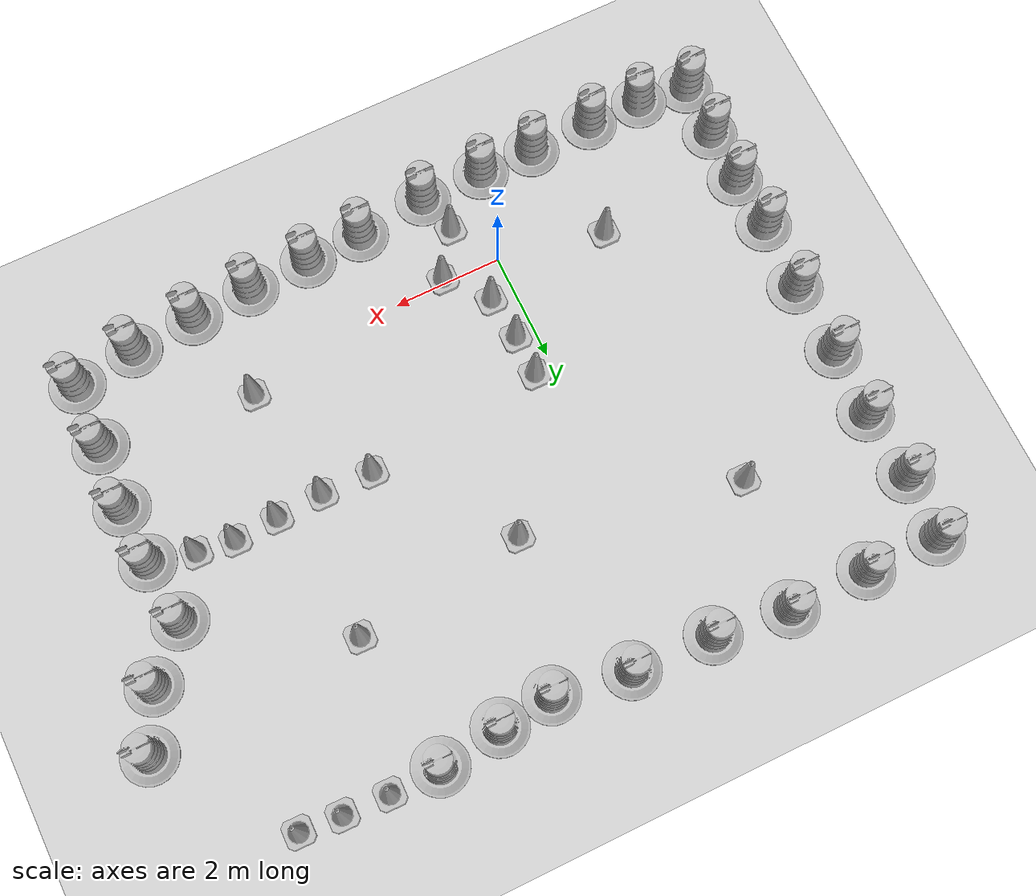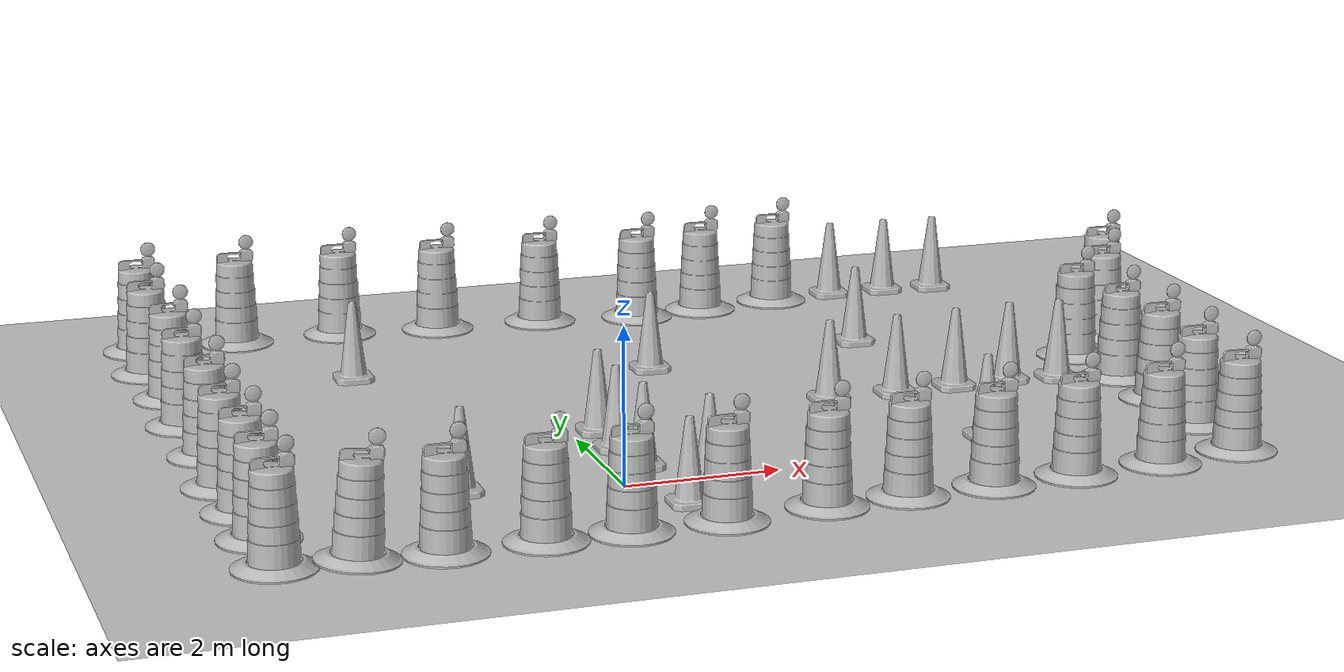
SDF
<sdf version="1.7">
 <world name="default">
  <light name="sun" type="directional">
   <pose>0 0 10 0 -0 0</pose>
   <diffuse>0.8 0.8 0.8 1</diffuse>
   <specular>0.2 0.2 0.2 1</specular>
   <attenuation>
    <range>1000</range>
    <constant>0.9</constant>
    <linear>0.01</linear>
    <quadratic>0.001</quadratic>
   </attenuation>
   <direction>-0.5 0.1 -0.9</direction>
   <spot><inner_angle>0</inner_angle><outer_angle>0</outer_angle><falloff>0</falloff></spot>
  </light>
  <model name="ground_plane">
   <static>1</static>
   <link name="link">
    <collision name="collision">
     <geometry><plane><normal>0 0 1</normal><size>100 100</size></plane></geometry>
     <surface>
      <contact><collide_bitmask>65535</collide_bitmask></contact>
      <friction><ode><mu>100</mu><mu2>50</mu2></ode></friction>
     </surface>
    </collision>
    <visual name="visual">
     <cast_shadows>0</cast_shadows>
     <geometry><plane><normal>0 0 1</normal><size>100 100</size></plane></geometry>
     <material>
      <script><uri>file://media/materials/scripts/gazebo.material</uri><name>Gazebo/Grey</name></script>
     </material>
    </visual>
   </link>
  </model>
  <gravity>0 0 -9.8</gravity>
  <magnetic_field>6e-06 2.3e-05 -4.2e-05</magnetic_field>
  <atmosphere type="adiabatic"/>
  <physics type="ode">
   <max_step_size>0.001</max_step_size>
   <real_time_factor>1</real_time_factor>
   <real_time_update_rate>1000</real_time_update_rate>
  </physics>
  <scene><ambient>0.4 0.4 0.4 1</ambient><background>0.7 0.7 0.7 1</background><shadows>1</shadows></scene>
  <spherical_coordinates>
   <surface_model>EARTH_WGS84</surface_model>
   <latitude_deg>0</latitude_deg>
   <longitude_deg>0</longitude_deg>
   <elevation>0</elevation>
   <heading_deg>0</heading_deg>
  </spherical_coordinates>
  <model name="Construction Cone">
   <link name="link">
    <collision name="collision">
     <geometry>
      <mesh><scale>10 10 10</scale><uri>model://construction_cone/meshes/construction_cone.dae</uri></mesh>
     </geometry>
    </collision>
    <visual name="visual">
     <geometry>
      <mesh><scale>10 10 10</scale><uri>model://construction_cone/meshes/construction_cone.dae</uri></mesh>
     </geometry>
    </visual>
    <inertial>
     <inertia><ixx>1</ixx><ixy>0</ixy><ixz>0</ixz><iyy>1</iyy><iyz>0</iyz><izz>1</izz></inertia>
     <mass>1</mass>
    </inertial>
   </link>
   <pose>0.52167 -0.888367 -0 0 -0 -0.018037</pose>
  </model>
  <model name="Construction Barrel">
   <link name="link">
    <inertial>
     <pose>0 0 0.4 0 -0 0</pose>
     <mass>500</mass>
     <inertia><ixx>51.2096</ixx><iyy>51.2096</iyy><izz>25</izz><ixy>0</ixy><ixz>0</ixz><iyz>0</iyz></inertia>
    </inertial>
    <collision name="collision">
     <geometry><mesh><uri>model://construction_barrel/meshes/construction_barrel.dae</uri></mesh></geometry>
    </collision>
    <visual name="visual">
     <geometry><mesh><uri>model://construction_barrel/meshes/construction_barrel.dae</uri></mesh></geometry>
    </visual>
   </link>
   <pose>-4.5871 -0.550462 -2e-06 7e-06 -4e-06 -0.002662</pose>
  </model>
  <model name="Construction Barrel_clone">
   <link name="link">
    <inertial>
     <pose>0 0 0.4 0 -0 0</pose>
     <mass>500</mass>
     <inertia><ixx>51.2096</ixx><iyy>51.2096</iyy><izz>25</izz><ixy>0</ixy><ixz>0</ixz><iyz>0</iyz></inertia>
    </inertial>
    <collision name="collision">
     <geometry><mesh><uri>model://construction_barrel/meshes/construction_barrel.dae</uri></mesh></geometry>
    </collision>
    <visual name="visual">
     <geometry><mesh><uri>model://construction_barrel/meshes/construction_barrel.dae</uri></mesh></geometry>
    </visual>
   </link>
   <pose>-4.62089 1.4811 -6e-06 -6e-06 -1.1e-05 0.001942</pose>
  </model>
  <model name="Construction Barrel_clone_0">
   <link name="link">
    <inertial>
     <pose>0 0 0.4 0 -0 0</pose>
     <mass>500</mass>
     <inertia><ixx>51.2096</ixx><iyy>51.2096</iyy><izz>25</izz><ixy>0</ixy><ixz>0</ixz><iyz>0</iyz></inertia>
    </inertial>
    <collision name="collision">
     <geometry><mesh><uri>model://construction_barrel/meshes/construction_barrel.dae</uri></mesh></geometry>
    </collision>
    <visual name="visual">
     <geometry><mesh><uri>model://construction_barrel/meshes/construction_barrel.dae</uri></mesh></geometry>
    </visual>
   </link>
   <pose>-4.56029 2.78047 -2e-06 -7e-06 -4e-06 -4.7e-05</pose>
  </model>
  <model name="Construction Barrel_clone_1">
   <link name="link">
    <inertial>
     <pose>0 0 0.4 0 -0 0</pose>
     <mass>500</mass>
     <inertia><ixx>51.2096</ixx><iyy>51.2096</iyy><izz>25</izz><ixy>0</ixy><ixz>0</ixz><iyz>0</iyz></inertia>
    </inertial>
    <collision name="collision">
     <geometry><mesh><uri>model://construction_barrel/meshes/construction_barrel.dae</uri></mesh></geometry>
    </collision>
    <visual name="visual">
     <geometry><mesh><uri>model://construction_barrel/meshes/construction_barrel.dae</uri></mesh></geometry>
    </visual>
   </link>
   <pose>-4.57095 0.467381 -2e-06 7e-06 -4e-06 0.005178</pose>
  </model>
  <model name="Construction Barrel_clone_2">
   <link name="link">
    <inertial>
     <pose>0 0 0.4 0 -0 0</pose>
     <mass>500</mass>
     <inertia><ixx>51.2096</ixx><iyy>51.2096</iyy><izz>25</izz><ixy>0</ixy><ixz>0</ixz><iyz>0</iyz></inertia>
    </inertial>
    <collision name="collision">
     <geometry><mesh><uri>model://construction_barrel/meshes/construction_barrel.dae</uri></mesh></geometry>
    </collision>
    <visual name="visual">
     <geometry><mesh><uri>model://construction_barrel/meshes/construction_barrel.dae</uri></mesh></geometry>
    </visual>
   </link>
   <pose>-4.61691 -1.57171 -0 0 -0 0.06464</pose>
  </model>
  <model name="Construction Barrel_clone_3">
   <link name="link">
    <inertial>
     <pose>0 0 0.4 0 -0 0</pose>
     <mass>500</mass>
     <inertia><ixx>51.2096</ixx><iyy>51.2096</iyy><izz>25</izz><ixy>0</ixy><ixz>0</ixz><iyz>0</iyz></inertia>
    </inertial>
    <collision name="collision">
     <geometry><mesh><uri>model://construction_barrel/meshes/construction_barrel.dae</uri></mesh></geometry>
    </collision>
    <visual name="visual">
     <geometry><mesh><uri>model://construction_barrel/meshes/construction_barrel.dae</uri></mesh></geometry>
    </visual>
   </link>
   <pose>-3.6926 -1.67387 0.03046 -0.007848 0.059768 -0.096534</pose>
  </model>
  <model name="Construction Barrel_clone_4">
   <link name="link">
    <inertial>
     <pose>0 0 0.4 0 -0 0</pose>
     <mass>500</mass>
     <inertia><ixx>51.2096</ixx><iyy>51.2096</iyy><izz>25</izz><ixy>0</ixy><ixz>0</ixz><iyz>0</iyz></inertia>
    </inertial>
    <collision name="collision">
     <geometry><mesh><uri>model://construction_barrel/meshes/construction_barrel.dae</uri></mesh></geometry>
    </collision>
    <visual name="visual">
     <geometry><mesh><uri>model://construction_barrel/meshes/construction_barrel.dae</uri></mesh></geometry>
    </visual>
   </link>
   <pose>-2.67268 -1.69044 -0 0 -0 0.037055</pose>
  </model>
  <model name="Construction Barrel_clone_5">
   <link name="link">
    <inertial>
     <pose>0 0 0.4 0 -0 0</pose>
     <mass>500</mass>
     <inertia><ixx>51.2096</ixx><iyy>51.2096</iyy><izz>25</izz><ixy>0</ixy><ixz>0</ixz><iyz>0</iyz></inertia>
    </inertial>
    <collision name="collision">
     <geometry><mesh><uri>model://construction_barrel/meshes/construction_barrel.dae</uri></mesh></geometry>
    </collision>
    <visual name="visual">
     <geometry><mesh><uri>model://construction_barrel/meshes/construction_barrel.dae</uri></mesh></geometry>
    </visual>
   </link>
   <pose>-1.48008 -1.6652 -2e-06 7e-06 -2e-06 -4.3e-05</pose>
  </model>
  <model name="Construction Barrel_clone_6">
   <link name="link">
    <inertial>
     <pose>0 0 0.4 0 -0 0</pose>
     <mass>500</mass>
     <inertia><ixx>51.2096</ixx><iyy>51.2096</iyy><izz>25</izz><ixy>0</ixy><ixz>0</ixz><iyz>0</iyz></inertia>
    </inertial>
    <collision name="collision">
     <geometry><mesh><uri>model://construction_barrel/meshes/construction_barrel.dae</uri></mesh></geometry>
    </collision>
    <visual name="visual">
     <geometry><mesh><uri>model://construction_barrel/meshes/construction_barrel.dae</uri></mesh></geometry>
    </visual>
   </link>
   <pose>-0.449571 -1.66431 -2e-06 -0 7e-06 -4.2e-05</pose>
  </model>
  <model name="Construction Barrel_clone_7">
   <link name="link">
    <inertial>
     <pose>0 0 0.4 0 -0 0</pose>
     <mass>500</mass>
     <inertia><ixx>51.2096</ixx><iyy>51.2096</iyy><izz>25</izz><ixy>0</ixy><ixz>0</ixz><iyz>0</iyz></inertia>
    </inertial>
    <collision name="collision">
     <geometry><mesh><uri>model://construction_barrel/meshes/construction_barrel.dae</uri></mesh></geometry>
    </collision>
    <visual name="visual">
     <geometry><mesh><uri>model://construction_barrel/meshes/construction_barrel.dae</uri></mesh></geometry>
    </visual>
   </link>
   <pose>-4.59713 4.13857 -1e-06 4e-06 -2e-06 -5.5e-05</pose>
  </model>
  <model name="Construction Barrel_clone_8">
   <link name="link">
    <inertial>
     <pose>0 0 0.4 0 -0 0</pose>
     <mass>500</mass>
     <inertia><ixx>51.2096</ixx><iyy>51.2096</iyy><izz>25</izz><ixy>0</ixy><ixz>0</ixz><iyz>0</iyz></inertia>
    </inertial>
    <collision name="collision">
     <geometry><mesh><uri>model://construction_barrel/meshes/construction_barrel.dae</uri></mesh></geometry>
    </collision>
    <visual name="visual">
     <geometry><mesh><uri>model://construction_barrel/meshes/construction_barrel.dae</uri></mesh></geometry>
    </visual>
   </link>
   <pose>-4.54499 5.40139 -2e-06 -7e-06 -4e-06 -3.6e-05</pose>
  </model>
  <model name="Construction Barrel_clone_9">
   <link name="link">
    <inertial>
     <pose>0 0 0.4 0 -0 0</pose>
     <mass>500</mass>
     <inertia><ixx>51.2096</ixx><iyy>51.2096</iyy><izz>25</izz><ixy>0</ixy><ixz>0</ixz><iyz>0</iyz></inertia>
    </inertial>
    <collision name="collision">
     <geometry><mesh><uri>model://construction_barrel/meshes/construction_barrel.dae</uri></mesh></geometry>
    </collision>
    <visual name="visual">
     <geometry><mesh><uri>model://construction_barrel/meshes/construction_barrel.dae</uri></mesh></geometry>
    </visual>
   </link>
   <pose>-4.62934 6.67478 -2e-06 0 7e-06 -3.7e-05</pose>
  </model>
  <model name="Construction Barrel_clone_10">
   <link name="link">
    <inertial>
     <pose>0 0 0.4 0 -0 0</pose>
     <mass>500</mass>
     <inertia><ixx>51.2096</ixx><iyy>51.2096</iyy><izz>25</izz><ixy>0</ixy><ixz>0</ixz><iyz>0</iyz></inertia>
    </inertial>
    <collision name="collision">
     <geometry><mesh><uri>model://construction_barrel/meshes/construction_barrel.dae</uri></mesh></geometry>
    </collision>
    <visual name="visual">
     <geometry><mesh><uri>model://construction_barrel/meshes/construction_barrel.dae</uri></mesh></geometry>
    </visual>
   </link>
   <pose>-4.55609 7.85933 -2e-06 7e-06 -2e-06 -4.3e-05</pose>
  </model>
  <model name="Construction Barrel_clone_11">
   <link name="link">
    <inertial>
     <pose>0 0 0.4 0 -0 0</pose>
     <mass>500</mass>
     <inertia><ixx>51.2096</ixx><iyy>51.2096</iyy><izz>25</izz><ixy>0</ixy><ixz>0</ixz><iyz>0</iyz></inertia>
    </inertial>
    <collision name="collision">
     <geometry><mesh><uri>model://construction_barrel/meshes/construction_barrel.dae</uri></mesh></geometry>
    </collision>
    <visual name="visual">
     <geometry><mesh><uri>model://construction_barrel/meshes/construction_barrel.dae</uri></mesh></geometry>
    </visual>
   </link>
   <pose>-3.18734 7.85064 -2e-06 -7e-06 -4e-06 -3.9e-05</pose>
  </model>
  <model name="Construction Barrel_clone_12">
   <link name="link">
    <inertial>
     <pose>0 0 0.4 0 -0 0</pose>
     <mass>500</mass>
     <inertia><ixx>51.2096</ixx><iyy>51.2096</iyy><izz>25</izz><ixy>0</ixy><ixz>0</ixz><iyz>0</iyz></inertia>
    </inertial>
    <collision name="collision">
     <geometry><mesh><uri>model://construction_barrel/meshes/construction_barrel.dae</uri></mesh></geometry>
    </collision>
    <visual name="visual">
     <geometry><mesh><uri>model://construction_barrel/meshes/construction_barrel.dae</uri></mesh></geometry>
    </visual>
   </link>
   <pose>-1.71003 7.87078 -2e-06 -7e-06 -4e-06 -4e-05</pose>
  </model>
  <model name="Construction Barrel_clone_13">
   <link name="link">
    <inertial>
     <pose>0 0 0.4 0 -0 0</pose>
     <mass>500</mass>
     <inertia><ixx>51.2096</ixx><iyy>51.2096</iyy><izz>25</izz><ixy>0</ixy><ixz>0</ixz><iyz>0</iyz></inertia>
    </inertial>
    <collision name="collision">
     <geometry><mesh><uri>model://construction_barrel/meshes/construction_barrel.dae</uri></mesh></geometry>
    </collision>
    <visual name="visual">
     <geometry><mesh><uri>model://construction_barrel/meshes/construction_barrel.dae</uri></mesh></geometry>
    </visual>
   </link>
   <pose>-0.319984 7.70015 -1e-06 4e-06 -2e-06 -5e-05</pose>
  </model>
  <model name="Construction Barrel_clone_14">
   <link name="link">
    <inertial>
     <pose>0 0 0.4 0 -0 0</pose>
     <mass>500</mass>
     <inertia><ixx>51.2096</ixx><iyy>51.2096</iyy><izz>25</izz><ixy>0</ixy><ixz>0</ixz><iyz>0</iyz></inertia>
    </inertial>
    <collision name="collision">
     <geometry><mesh><uri>model://construction_barrel/meshes/construction_barrel.dae</uri></mesh></geometry>
    </collision>
    <visual name="visual">
     <geometry><mesh><uri>model://construction_barrel/meshes/construction_barrel.dae</uri></mesh></geometry>
    </visual>
   </link>
   <pose>1.18144 7.63457 -2e-06 -7e-06 -4e-06 -3.9e-05</pose>
  </model>
  <model name="Construction Barrel_clone_15">
   <link name="link">
    <inertial>
     <pose>0 0 0.4 0 -0 0</pose>
     <mass>500</mass>
     <inertia><ixx>51.2096</ixx><iyy>51.2096</iyy><izz>25</izz><ixy>0</ixy><ixz>0</ixz><iyz>0</iyz></inertia>
    </inertial>
    <collision name="collision">
     <geometry><mesh><uri>model://construction_barrel/meshes/construction_barrel.dae</uri></mesh></geometry>
    </collision>
    <visual name="visual">
     <geometry><mesh><uri>model://construction_barrel/meshes/construction_barrel.dae</uri></mesh></geometry>
    </visual>
   </link>
   <pose>2.58314 7.42158 0 0 0 -0.000641</pose>
  </model>
  <model name="Construction Barrel_clone_16">
   <link name="link">
    <inertial>
     <pose>0 0 0.4 0 -0 0</pose>
     <mass>500</mass>
     <inertia><ixx>51.2096</ixx><iyy>51.2096</iyy><izz>25</izz><ixy>0</ixy><ixz>0</ixz><iyz>0</iyz></inertia>
    </inertial>
    <collision name="collision">
     <geometry><mesh><uri>model://construction_barrel/meshes/construction_barrel.dae</uri></mesh></geometry>
    </collision>
    <visual name="visual">
     <geometry><mesh><uri>model://construction_barrel/meshes/construction_barrel.dae</uri></mesh></geometry>
    </visual>
   </link>
   <pose>0.726668 -1.64864 0 0 0 -0.001437</pose>
  </model>
  <model name="Construction Barrel_clone_17">
   <link name="link">
    <inertial>
     <pose>0 0 0.4 0 -0 0</pose>
     <mass>500</mass>
     <inertia><ixx>51.2096</ixx><iyy>51.2096</iyy><izz>25</izz><ixy>0</ixy><ixz>0</ixz><iyz>0</iyz></inertia>
    </inertial>
    <collision name="collision">
     <geometry><mesh><uri>model://construction_barrel/meshes/construction_barrel.dae</uri></mesh></geometry>
    </collision>
    <visual name="visual">
     <geometry><mesh><uri>model://construction_barrel/meshes/construction_barrel.dae</uri></mesh></geometry>
    </visual>
   </link>
   <pose>2.03248 -1.50937 -1e-06 4e-06 -2e-06 -4.2e-05</pose>
  </model>
  <model name="Construction Barrel_clone_18">
   <link name="link">
    <inertial>
     <pose>0 0 0.4 0 -0 0</pose>
     <mass>500</mass>
     <inertia><ixx>51.2096</ixx><iyy>51.2096</iyy><izz>25</izz><ixy>0</ixy><ixz>0</ixz><iyz>0</iyz></inertia>
    </inertial>
    <collision name="collision">
     <geometry><mesh><uri>model://construction_barrel/meshes/construction_barrel.dae</uri></mesh></geometry>
    </collision>
    <visual name="visual">
     <geometry><mesh><uri>model://construction_barrel/meshes/construction_barrel.dae</uri></mesh></geometry>
    </visual>
   </link>
   <pose>3.09027 -1.45722 -2e-06 -7e-06 -4e-06 -3.6e-05</pose>
  </model>
  <model name="Construction Barrel_clone_19">
   <link name="link">
    <inertial>
     <pose>0 0 0.4 0 -0 0</pose>
     <mass>500</mass>
     <inertia><ixx>51.2096</ixx><iyy>51.2096</iyy><izz>25</izz><ixy>0</ixy><ixz>0</ixz><iyz>0</iyz></inertia>
    </inertial>
    <collision name="collision">
     <geometry><mesh><uri>model://construction_barrel/meshes/construction_barrel.dae</uri></mesh></geometry>
    </collision>
    <visual name="visual">
     <geometry><mesh><uri>model://construction_barrel/meshes/construction_barrel.dae</uri></mesh></geometry>
    </visual>
   </link>
   <pose>4.23393 -1.41271 -2e-06 0 7e-06 -3.4e-05</pose>
  </model>
  <model name="Construction Barrel_clone_20">
   <link name="link">
    <inertial>
     <pose>0 0 0.4 0 -0 0</pose>
     <mass>500</mass>
     <inertia><ixx>51.2096</ixx><iyy>51.2096</iyy><izz>25</izz><ixy>0</ixy><ixz>0</ixz><iyz>0</iyz></inertia>
    </inertial>
    <collision name="collision">
     <geometry><mesh><uri>model://construction_barrel/meshes/construction_barrel.dae</uri></mesh></geometry>
    </collision>
    <visual name="visual">
     <geometry><mesh><uri>model://construction_barrel/meshes/construction_barrel.dae</uri></mesh></geometry>
    </visual>
   </link>
   <pose>5.35958 -1.34607 -0 0 0 -3.4e-05</pose>
  </model>
  <model name="Construction Barrel_clone_21">
   <link name="link">
    <inertial>
     <pose>0 0 0.4 0 -0 0</pose>
     <mass>500</mass>
     <inertia><ixx>51.2096</ixx><iyy>51.2096</iyy><izz>25</izz><ixy>0</ixy><ixz>0</ixz><iyz>0</iyz></inertia>
    </inertial>
    <collision name="collision">
     <geometry><mesh><uri>model://construction_barrel/meshes/construction_barrel.dae</uri></mesh></geometry>
    </collision>
    <visual name="visual">
     <geometry><mesh><uri>model://construction_barrel/meshes/construction_barrel.dae</uri></mesh></geometry>
    </visual>
   </link>
   <pose>3.58963 7.52921 -2e-06 4e-06 7e-06 0.004335</pose>
  </model>
  <model name="Construction Barrel_clone_22">
   <link name="link">
    <inertial>
     <pose>0 0 0.4 0 -0 0</pose>
     <mass>500</mass>
     <inertia><ixx>51.2096</ixx><iyy>51.2096</iyy><izz>25</izz><ixy>0</ixy><ixz>0</ixz><iyz>0</iyz></inertia>
    </inertial>
    <collision name="collision">
     <geometry><mesh><uri>model://construction_barrel/meshes/construction_barrel.dae</uri></mesh></geometry>
    </collision>
    <visual name="visual">
     <geometry><mesh><uri>model://construction_barrel/meshes/construction_barrel.dae</uri></mesh></geometry>
    </visual>
   </link>
   <pose>4.75619 7.68078 -2e-06 -7e-06 -4e-06 -3.3e-05</pose>
  </model>
  <model name="Construction Barrel_clone_23">
   <link name="link">
    <inertial>
     <pose>0 0 0.4 0 -0 0</pose>
     <mass>500</mass>
     <inertia><ixx>51.2096</ixx><iyy>51.2096</iyy><izz>25</izz><ixy>0</ixy><ixz>0</ixz><iyz>0</iyz></inertia>
    </inertial>
    <collision name="collision">
     <geometry><mesh><uri>model://construction_barrel/meshes/construction_barrel.dae</uri></mesh></geometry>
    </collision>
    <visual name="visual">
     <geometry><mesh><uri>model://construction_barrel/meshes/construction_barrel.dae</uri></mesh></geometry>
    </visual>
   </link>
   <pose>6.55259 -1.25227 -2e-06 -7e-06 -4e-06 -3.5e-05</pose>
  </model>
  <model name="Construction Barrel_clone_24">
   <link name="link">
    <inertial>
     <pose>0 0 0.4 0 -0 0</pose>
     <mass>500</mass>
     <inertia><ixx>51.2096</ixx><iyy>51.2096</iyy><izz>25</izz><ixy>0</ixy><ixz>0</ixz><iyz>0</iyz></inertia>
    </inertial>
    <collision name="collision">
     <geometry><mesh><uri>model://construction_barrel/meshes/construction_barrel.dae</uri></mesh></geometry>
    </collision>
    <visual name="visual">
     <geometry><mesh><uri>model://construction_barrel/meshes/construction_barrel.dae</uri></mesh></geometry>
    </visual>
   </link>
   <pose>7.70519 -1.06864 -0 0 -0 -3.3e-05</pose>
  </model>
  <model name="Construction Barrel_clone_25">
   <link name="link">
    <inertial>
     <pose>0 0 0.4 0 -0 0</pose>
     <mass>500</mass>
     <inertia><ixx>51.2096</ixx><iyy>51.2096</iyy><izz>25</izz><ixy>0</ixy><ixz>0</ixz><iyz>0</iyz></inertia>
    </inertial>
    <collision name="collision">
     <geometry><mesh><uri>model://construction_barrel/meshes/construction_barrel.dae</uri></mesh></geometry>
    </collision>
    <visual name="visual">
     <geometry><mesh><uri>model://construction_barrel/meshes/construction_barrel.dae</uri></mesh></geometry>
    </visual>
   </link>
   <pose>7.75044 0.132149 -2e-06 7e-06 -2e-06 -2.9e-05</pose>
  </model>
  <model name="Construction Barrel_clone_26">
   <link name="link">
    <inertial>
     <pose>0 0 0.4 0 -0 0</pose>
     <mass>500</mass>
     <inertia><ixx>51.2096</ixx><iyy>51.2096</iyy><izz>25</izz><ixy>0</ixy><ixz>0</ixz><iyz>0</iyz></inertia>
    </inertial>
    <collision name="collision">
     <geometry><mesh><uri>model://construction_barrel/meshes/construction_barrel.dae</uri></mesh></geometry>
    </collision>
    <visual name="visual">
     <geometry><mesh><uri>model://construction_barrel/meshes/construction_barrel.dae</uri></mesh></geometry>
    </visual>
   </link>
   <pose>7.8327 1.31576 -0 0 -0 -3e-05</pose>
  </model>
  <model name="Construction Barrel_clone_27">
   <link name="link">
    <inertial>
     <pose>0 0 0.4 0 -0 0</pose>
     <mass>500</mass>
     <inertia><ixx>51.2096</ixx><iyy>51.2096</iyy><izz>25</izz><ixy>0</ixy><ixz>0</ixz><iyz>0</iyz></inertia>
    </inertial>
    <collision name="collision">
     <geometry><mesh><uri>model://construction_barrel/meshes/construction_barrel.dae</uri></mesh></geometry>
    </collision>
    <visual name="visual">
     <geometry><mesh><uri>model://construction_barrel/meshes/construction_barrel.dae</uri></mesh></geometry>
    </visual>
   </link>
   <pose>7.80034 2.39731 1e-06 3e-06 2e-06 -2.8e-05</pose>
  </model>
  <model name="Construction Barrel_clone_28">
   <link name="link">
    <inertial>
     <pose>0 0 0.4 0 -0 0</pose>
     <mass>500</mass>
     <inertia><ixx>51.2096</ixx><iyy>51.2096</iyy><izz>25</izz><ixy>0</ixy><ixz>0</ixz><iyz>0</iyz></inertia>
    </inertial>
    <collision name="collision">
     <geometry><mesh><uri>model://construction_barrel/meshes/construction_barrel.dae</uri></mesh></geometry>
    </collision>
    <visual name="visual">
     <geometry><mesh><uri>model://construction_barrel/meshes/construction_barrel.dae</uri></mesh></geometry>
    </visual>
   </link>
   <pose>7.69362 3.56748 -2e-06 -7e-06 -4e-06 -3.2e-05</pose>
  </model>
  <model name="Construction Barrel_clone_29">
   <link name="link">
    <inertial>
     <pose>0 0 0.4 0 -0 0</pose>
     <mass>500</mass>
     <inertia><ixx>51.2096</ixx><iyy>51.2096</iyy><izz>25</izz><ixy>0</ixy><ixz>0</ixz><iyz>0</iyz></inertia>
    </inertial>
    <collision name="collision">
     <geometry><mesh><uri>model://construction_barrel/meshes/construction_barrel.dae</uri></mesh></geometry>
    </collision>
    <visual name="visual">
     <geometry><mesh><uri>model://construction_barrel/meshes/construction_barrel.dae</uri></mesh></geometry>
    </visual>
   </link>
   <pose>8.51239 4.39954 -1e-06 -8e-06 -2e-06 -2.4e-05</pose>
  </model>
  <model name="Construction Barrel_clone_30">
   <link name="link">
    <inertial>
     <pose>0 0 0.4 0 -0 0</pose>
     <mass>500</mass>
     <inertia><ixx>51.2096</ixx><iyy>51.2096</iyy><izz>25</izz><ixy>0</ixy><ixz>0</ixz><iyz>0</iyz></inertia>
    </inertial>
    <collision name="collision">
     <geometry><mesh><uri>model://construction_barrel/meshes/construction_barrel.dae</uri></mesh></geometry>
    </collision>
    <visual name="visual">
     <geometry><mesh><uri>model://construction_barrel/meshes/construction_barrel.dae</uri></mesh></geometry>
    </visual>
   </link>
   <pose>9.01426 5.431 -2e-06 -5e-06 -4e-06 -0.002658</pose>
  </model>
  <model name="Construction Cone_clone">
   <link name="link">
    <collision name="collision">
     <geometry>
      <mesh><scale>10 10 10</scale><uri>model://construction_cone/meshes/construction_cone.dae</uri></mesh>
     </geometry>
    </collision>
    <visual name="visual">
     <geometry>
      <mesh><scale>10 10 10</scale><uri>model://construction_cone/meshes/construction_cone.dae</uri></mesh>
     </geometry>
    </visual>
    <inertial>
     <inertia><ixx>1</ixx><ixy>0</ixy><ixz>0</ixz><iyy>1</iyy><iyz>0</iyz><izz>1</izz></inertia>
     <mass>1</mass>
    </inertial>
   </link>
   <pose>1.05534 -0.084515 -9e-06 0 1e-06 -0.018037</pose>
  </model>
  <model name="Construction Cone_clone_0">
   <link name="link">
    <collision name="collision">
     <geometry>
      <mesh><scale>10 10 10</scale><uri>model://construction_cone/meshes/construction_cone.dae</uri></mesh>
     </geometry>
    </collision>
    <visual name="visual">
     <geometry>
      <mesh><scale>10 10 10</scale><uri>model://construction_cone/meshes/construction_cone.dae</uri></mesh>
     </geometry>
    </visual>
    <inertial>
     <inertia><ixx>1</ixx><ixy>0</ixy><ixz>0</ixz><iyy>1</iyy><iyz>0</iyz><izz>1</izz></inertia>
     <mass>1</mass>
    </inertial>
   </link>
   <pose>0.446605 0.643834 -0 0 0 -0.018037</pose>
  </model>
  <model name="Construction Cone_clone_1">
   <link name="link">
    <collision name="collision">
     <geometry>
      <mesh><scale>10 10 10</scale><uri>model://construction_cone/meshes/construction_cone.dae</uri></mesh>
     </geometry>
    </collision>
    <visual name="visual">
     <geometry>
      <mesh><scale>10 10 10</scale><uri>model://construction_cone/meshes/construction_cone.dae</uri></mesh>
     </geometry>
    </visual>
    <inertial>
     <inertia><ixx>1</ixx><ixy>0</ixy><ixz>0</ixz><iyy>1</iyy><iyz>0</iyz><izz>1</izz></inertia>
     <mass>1</mass>
    </inertial>
   </link>
   <pose>0.359534 1.46419 -0 0 0 -0.018037</pose>
  </model>
  <model name="Construction Cone_clone_2">
   <link name="link">
    <collision name="collision">
     <geometry>
      <mesh><scale>10 10 10</scale><uri>model://construction_cone/meshes/construction_cone.dae</uri></mesh>
     </geometry>
    </collision>
    <visual name="visual">
     <geometry>
      <mesh><scale>10 10 10</scale><uri>model://construction_cone/meshes/construction_cone.dae</uri></mesh>
     </geometry>
    </visual>
    <inertial>
     <inertia><ixx>1</ixx><ixy>0</ixy><ixz>0</ixz><iyy>1</iyy><iyz>0</iyz><izz>1</izz></inertia>
     <mass>1</mass>
    </inertial>
   </link>
   <pose>0.358958 2.23075 -0 0 0 -0.018037</pose>
  </model>
  <model name="Construction Cone_clone_3">
   <link name="link">
    <collision name="collision">
     <geometry>
      <mesh><scale>10 10 10</scale><uri>model://construction_cone/meshes/construction_cone.dae</uri></mesh>
     </geometry>
    </collision>
    <visual name="visual">
     <geometry>
      <mesh><scale>10 10 10</scale><uri>model://construction_cone/meshes/construction_cone.dae</uri></mesh>
     </geometry>
    </visual>
    <inertial>
     <inertia><ixx>1</ixx><ixy>0</ixy><ixz>0</ixz><iyy>1</iyy><iyz>0</iyz><izz>1</izz></inertia>
     <mass>1</mass>
    </inertial>
   </link>
   <pose>6.98037 2.61117 -0 0 0 -0.018037</pose>
  </model>
  <model name="Construction Cone_clone_4">
   <link name="link">
    <collision name="collision">
     <geometry>
      <mesh><scale>10 10 10</scale><uri>model://construction_cone/meshes/construction_cone.dae</uri></mesh>
     </geometry>
    </collision>
    <visual name="visual">
     <geometry>
      <mesh><scale>10 10 10</scale><uri>model://construction_cone/meshes/construction_cone.dae</uri></mesh>
     </geometry>
    </visual>
    <inertial>
     <inertia><ixx>1</ixx><ixy>0</ixy><ixz>0</ixz><iyy>1</iyy><iyz>0</iyz><izz>1</izz></inertia>
     <mass>1</mass>
    </inertial>
   </link>
   <pose>6.29516 2.69937 -0 1e-06 -0 -0.018037</pose>
  </model>
  <model name="Construction Cone_clone_5">
   <link name="link">
    <collision name="collision">
     <geometry>
      <mesh><scale>10 10 10</scale><uri>model://construction_cone/meshes/construction_cone.dae</uri></mesh>
     </geometry>
    </collision>
    <visual name="visual">
     <geometry>
      <mesh><scale>10 10 10</scale><uri>model://construction_cone/meshes/construction_cone.dae</uri></mesh>
     </geometry>
    </visual>
    <inertial>
     <inertia><ixx>1</ixx><ixy>0</ixy><ixz>0</ixz><iyy>1</iyy><iyz>0</iyz><izz>1</izz></inertia>
     <mass>1</mass>
    </inertial>
   </link>
   <pose>5.49269 2.64873 -0 0 0 -0.018037</pose>
  </model>
  <model name="Construction Cone_clone_6">
   <link name="link">
    <collision name="collision">
     <geometry>
      <mesh><scale>10 10 10</scale><uri>model://construction_cone/meshes/construction_cone.dae</uri></mesh>
     </geometry>
    </collision>
    <visual name="visual">
     <geometry>
      <mesh><scale>10 10 10</scale><uri>model://construction_cone/meshes/construction_cone.dae</uri></mesh>
     </geometry>
    </visual>
    <inertial>
     <inertia><ixx>1</ixx><ixy>0</ixy><ixz>0</ixz><iyy>1</iyy><iyz>0</iyz><izz>1</izz></inertia>
     <mass>1</mass>
    </inertial>
   </link>
   <pose>4.62644 2.59916 -0 0 0 -0.018037</pose>
  </model>
  <model name="Construction Cone_clone_7">
   <link name="link">
    <collision name="collision">
     <geometry>
      <mesh><scale>10 10 10</scale><uri>model://construction_cone/meshes/construction_cone.dae</uri></mesh>
     </geometry>
    </collision>
    <visual name="visual">
     <geometry>
      <mesh><scale>10 10 10</scale><uri>model://construction_cone/meshes/construction_cone.dae</uri></mesh>
     </geometry>
    </visual>
    <inertial>
     <inertia><ixx>1</ixx><ixy>0</ixy><ixz>0</ixz><iyy>1</iyy><iyz>0</iyz><izz>1</izz></inertia>
     <mass>1</mass>
    </inertial>
   </link>
   <pose>5.69354 7.72607 -0 0 0 -0.018037</pose>
  </model>
  <model name="Construction Cone_clone_8">
   <link name="link">
    <collision name="collision">
     <geometry>
      <mesh><scale>10 10 10</scale><uri>model://construction_cone/meshes/construction_cone.dae</uri></mesh>
     </geometry>
    </collision>
    <visual name="visual">
     <geometry>
      <mesh><scale>10 10 10</scale><uri>model://construction_cone/meshes/construction_cone.dae</uri></mesh>
     </geometry>
    </visual>
    <inertial>
     <inertia><ixx>1</ixx><ixy>0</ixy><ixz>0</ixz><iyy>1</iyy><iyz>0</iyz><izz>1</izz></inertia>
     <mass>1</mass>
    </inertial>
   </link>
   <pose>6.53635 7.69609 -1e-05 -1e-06 -0 -0.018037</pose>
  </model>
  <model name="Construction Cone_clone_9">
   <link name="link">
    <collision name="collision">
     <geometry>
      <mesh><scale>10 10 10</scale><uri>model://construction_cone/meshes/construction_cone.dae</uri></mesh>
     </geometry>
    </collision>
    <visual name="visual">
     <geometry>
      <mesh><scale>10 10 10</scale><uri>model://construction_cone/meshes/construction_cone.dae</uri></mesh>
     </geometry>
    </visual>
    <inertial>
     <inertia><ixx>1</ixx><ixy>0</ixy><ixz>0</ixz><iyy>1</iyy><iyz>0</iyz><izz>1</izz></inertia>
     <mass>1</mass>
    </inertial>
   </link>
   <pose>7.29213 7.63471 -0 0 0 -0.018037</pose>
  </model>
  <model name="Construction Cone_clone_10">
   <link name="link">
    <collision name="collision">
     <geometry>
      <mesh><scale>10 10 10</scale><uri>model://construction_cone/meshes/construction_cone.dae</uri></mesh>
     </geometry>
    </collision>
    <visual name="visual">
     <geometry>
      <mesh><scale>10 10 10</scale><uri>model://construction_cone/meshes/construction_cone.dae</uri></mesh>
     </geometry>
    </visual>
    <inertial>
     <inertia><ixx>1</ixx><ixy>0</ixy><ixz>0</ixz><iyy>1</iyy><iyz>0</iyz><izz>1</izz></inertia>
     <mass>1</mass>
    </inertial>
   </link>
   <pose>3.68098 2.6182 -6e-06 -4e-06 -0 -0.018037</pose>
  </model>
  <model name="Construction Cone_clone_11">
   <link name="link">
    <collision name="collision">
     <geometry>
      <mesh><scale>10 10 10</scale><uri>model://construction_cone/meshes/construction_cone.dae</uri></mesh>
     </geometry>
    </collision>
    <visual name="visual">
     <geometry>
      <mesh><scale>10 10 10</scale><uri>model://construction_cone/meshes/construction_cone.dae</uri></mesh>
     </geometry>
    </visual>
    <inertial>
     <inertia><ixx>1</ixx><ixy>0</ixy><ixz>0</ixz><iyy>1</iyy><iyz>0</iyz><izz>1</izz></inertia>
     <mass>1</mass>
    </inertial>
   </link>
   <pose>4.96447 0.444339 -0 0 -0 -0.018037</pose>
  </model>
  <model name="Construction Cone_clone_12">
   <link name="link">
    <collision name="collision">
     <geometry>
      <mesh><scale>10 10 10</scale><uri>model://construction_cone/meshes/construction_cone.dae</uri></mesh>
     </geometry>
    </collision>
    <visual name="visual">
     <geometry>
      <mesh><scale>10 10 10</scale><uri>model://construction_cone/meshes/construction_cone.dae</uri></mesh>
     </geometry>
    </visual>
    <inertial>
     <inertia><ixx>1</ixx><ixy>0</ixy><ixz>0</ixz><iyy>1</iyy><iyz>0</iyz><izz>1</izz></inertia>
     <mass>1</mass>
    </inertial>
   </link>
   <pose>-1.94853 0.358021 -0 0 0 -0.018037</pose>
  </model>
  <model name="Construction Cone_clone_13">
   <link name="link">
    <collision name="collision">
     <geometry>
      <mesh><scale>10 10 10</scale><uri>model://construction_cone/meshes/construction_cone.dae</uri></mesh>
     </geometry>
    </collision>
    <visual name="visual">
     <geometry>
      <mesh><scale>10 10 10</scale><uri>model://construction_cone/meshes/construction_cone.dae</uri></mesh>
     </geometry>
    </visual>
    <inertial>
     <inertia><ixx>1</ixx><ixy>0</ixy><ixz>0</ixz><iyy>1</iyy><iyz>0</iyz><izz>1</izz></inertia>
     <mass>1</mass>
    </inertial>
   </link>
   <pose>-2.05594 5.53068 -0 0 0 -0.018037</pose>
  </model>
  <model name="Construction Cone_clone_14">
   <link name="link">
    <collision name="collision">
     <geometry>
      <mesh><scale>10 10 10</scale><uri>model://construction_cone/meshes/construction_cone.dae</uri></mesh>
     </geometry>
    </collision>
    <visual name="visual">
     <geometry>
      <mesh><scale>10 10 10</scale><uri>model://construction_cone/meshes/construction_cone.dae</uri></mesh>
     </geometry>
    </visual>
    <inertial>
     <inertia><ixx>1</ixx><ixy>0</ixy><ixz>0</ixz><iyy>1</iyy><iyz>0</iyz><izz>1</izz></inertia>
     <mass>1</mass>
    </inertial>
   </link>
   <pose>1.89799 4.73923 -0 0 0 -0.018037</pose>
  </model>
  <model name="Construction Cone_clone_15">
   <link name="link">
    <collision name="collision">
     <geometry>
      <mesh><scale>10 10 10</scale><uri>model://construction_cone/meshes/construction_cone.dae</uri></mesh>
     </geometry>
    </collision>
    <visual name="visual">
     <geometry>
      <mesh><scale>10 10 10</scale><uri>model://construction_cone/meshes/construction_cone.dae</uri></mesh>
     </geometry>
    </visual>
    <inertial>
     <inertia><ixx>1</ixx><ixy>0</ixy><ixz>0</ixz><iyy>1</iyy><iyz>0</iyz><izz>1</izz></inertia>
     <mass>1</mass>
    </inertial>
   </link>
   <pose>5.05797 5.14685 -8e-06 -6e-06 0 -0.018037</pose>
  </model>
 </world>
</sdf>
